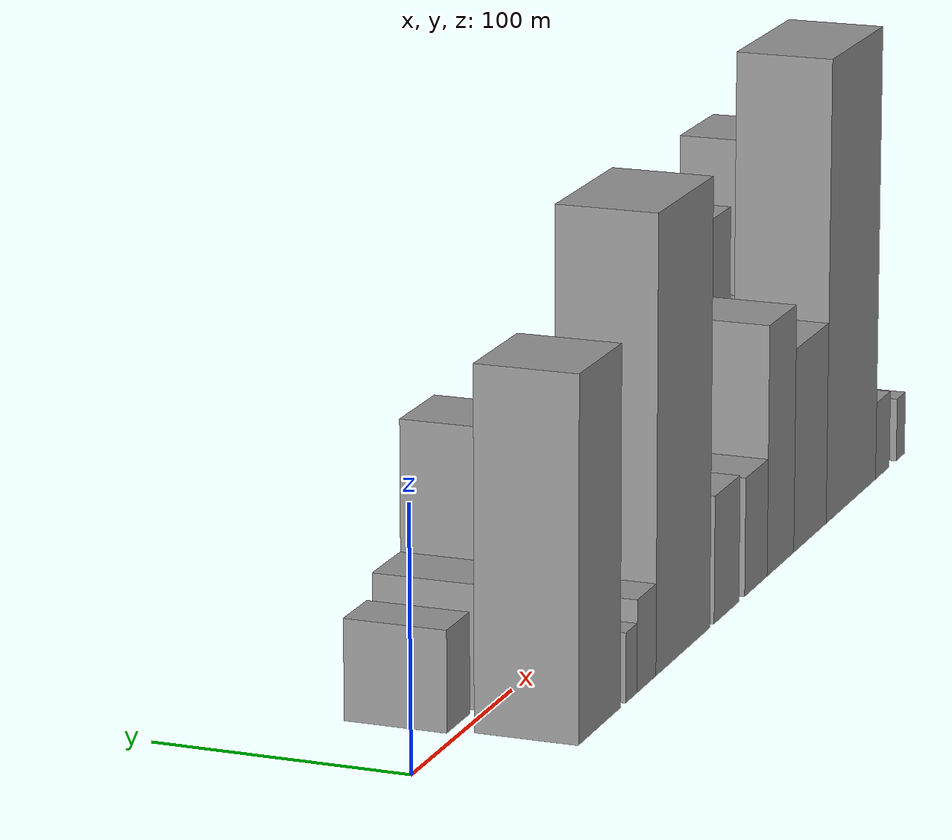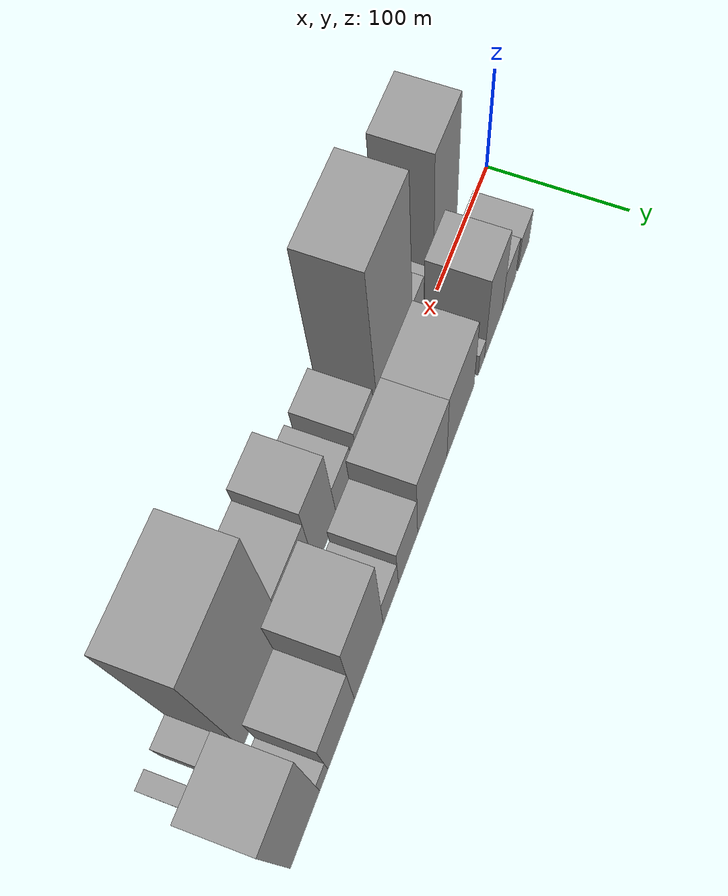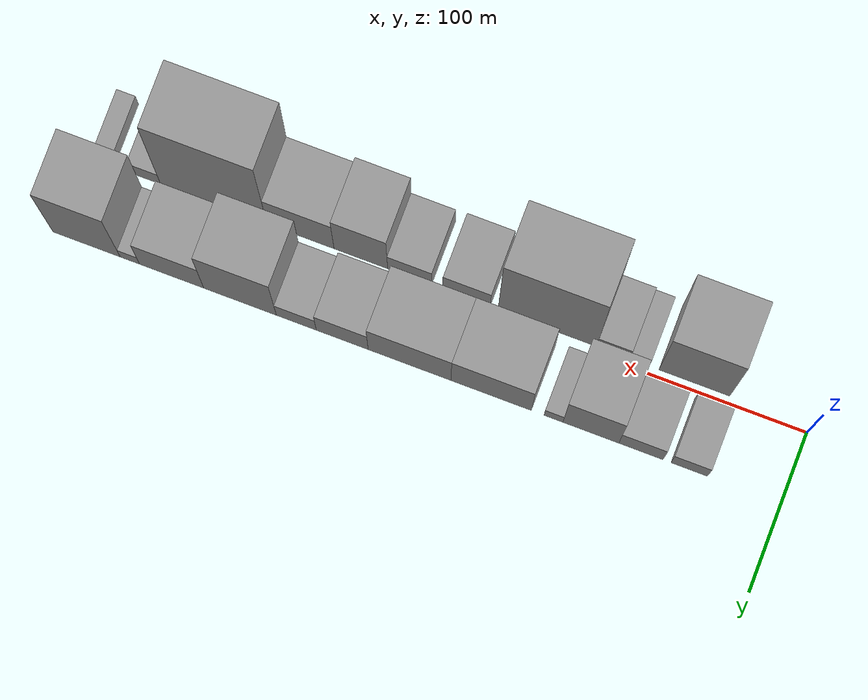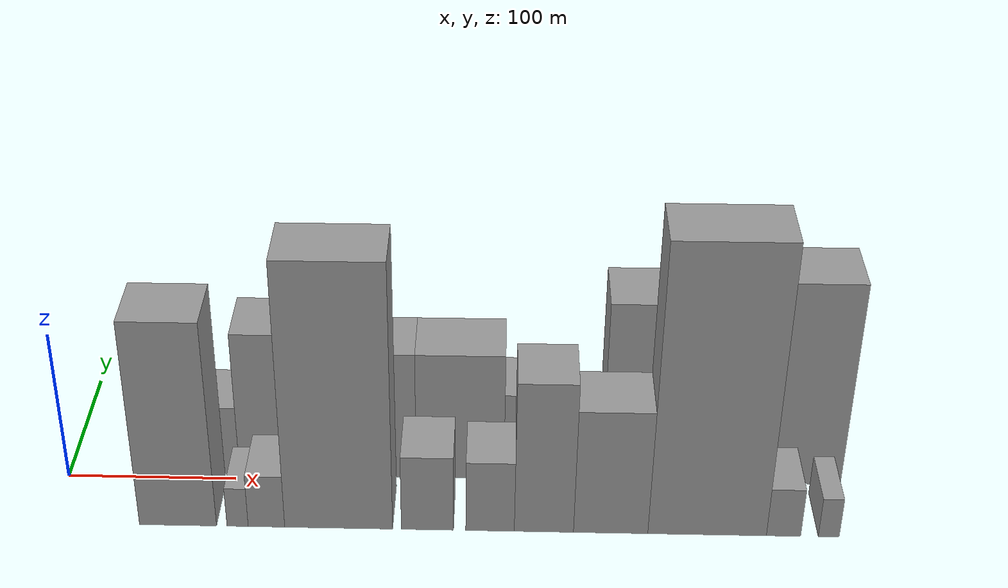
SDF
<sdf version="1.6">
 <world name="default">
  <scene>
   <sky><clouds><speed>12</speed></clouds></sky>
   <ambient>0.4 0.4 0.4 1</ambient>
   <background>0.7 0.7 0.7 1</background>
   <shadows>1</shadows>
  </scene>
  <gravity>0 0 -9.8066</gravity>
  <magnetic_field>6e-06 2.3e-05 -4.2e-05</magnetic_field>
  <physics default="0" name="default_physics" type="ode">
   <ode>
    <solver>
     <type>quick</type>
     <iters>10</iters>
     <sor>1.0</sor>
     <use_dynamic_moi_rescaling>0</use_dynamic_moi_rescaling>
    </solver>
    <constraints>
     <cfm>0</cfm>
     <erp>0.2</erp>
     <contact_max_correcting_vel>100</contact_max_correcting_vel>
     <contact_surface_layer>0.001</contact_surface_layer>
    </constraints>
   </ode>
   <max_step_size>0.004</max_step_size>
   <real_time_factor>1</real_time_factor>
   <real_time_update_rate>250</real_time_update_rate>
  </physics>
  <light name="sun" type="directional">
   <pose>0 0 10 0 0 0</pose>
   <diffuse>0.8 0.8 0.8 1</diffuse>
   <specular>0.2 0.2 0.2 1</specular>
   <attenuation>
    <range>1000</range>
    <constant>0.9</constant>
    <linear>0.01</linear>
    <quadratic>0.001</quadratic>
   </attenuation>
   <direction>-0.5 0.1 -0.9</direction>
  </light>
  <model name="building_1">
   <static>1</static>
   <pose>57.4059 24.5000 0 0.000000 0.000000 1.570796</pose>
   <link name="link">
    <pose>0 0 19.50 0 0 0</pose>
    <collision name="collision"><geometry><box><size>40.0000 22.8118 39.0000</size></box></geometry></collision>
    <visual name="visual">
     <cast_shadows>0</cast_shadows>
     <geometry><box><size>40.0000 22.8118 39.0000</size></box></geometry>
     <material>
      <script>
       <uri>model://grey_wall/materials/scripts</uri>
       <uri>model://grey_wall/materials/textures</uri>
       <name>vrc/grey_wall</name>
      </script>
     </material>
    </visual>
   </link>
  </model>
  <model name="building_2">
   <static>1</static>
   <pose>87.6651 24.5000 0 0.000000 0.000000 1.570796</pose>
   <link name="link">
    <pose>0 0 24.00 0 0 0</pose>
    <collision name="collision"><geometry><box><size>40.0000 27.7066 48.0000</size></box></geometry></collision>
    <visual name="visual">
     <cast_shadows>0</cast_shadows>
     <geometry><box><size>40.0000 27.7066 48.0000</size></box></geometry>
     <material>
      <script>
       <uri>model://grey_wall/materials/scripts</uri>
       <uri>model://grey_wall/materials/textures</uri>
       <name>vrc/grey_wall</name>
      </script>
     </material>
    </visual>
   </link>
  </model>
  <model name="building_3">
   <static>1</static>
   <pose>119.0277 24.5000 0 0.000000 0.000000 1.570796</pose>
   <link name="link">
    <pose>0 0 49.50 0 0 0</pose>
    <collision name="collision"><geometry><box><size>40.0000 35.0186 99.0000</size></box></geometry></collision>
    <visual name="visual">
     <cast_shadows>0</cast_shadows>
     <geometry><box><size>40.0000 35.0186 99.0000</size></box></geometry>
     <material>
      <script>
       <uri>model://grey_wall/materials/scripts</uri>
       <uri>model://grey_wall/materials/textures</uri>
       <name>vrc/grey_wall</name>
      </script>
     </material>
    </visual>
   </link>
  </model>
  <model name="building_4">
   <static>1</static>
   <pose>142.4382 24.5000 0 0.000000 0.000000 1.570796</pose>
   <link name="link">
    <pose>0 0 13.50 0 0 0</pose>
    <collision name="collision"><geometry><box><size>40.0000 11.8025 27.0000</size></box></geometry></collision>
    <visual name="visual">
     <cast_shadows>0</cast_shadows>
     <geometry><box><size>40.0000 11.8025 27.0000</size></box></geometry>
     <material>
      <script>
       <uri>model://grey_wall/materials/scripts</uri>
       <uri>model://grey_wall/materials/textures</uri>
       <name>vrc/grey_wall</name>
      </script>
     </material>
    </visual>
   </link>
  </model>
  <model name="building_5">
   <static>1</static>
   <pose>181.5953 24.5000 0 0.000000 0.000000 1.570796</pose>
   <link name="link">
    <pose>0 0 43.50 0 0 0</pose>
    <collision name="collision"><geometry><box><size>40.0000 50.5118 87.0000</size></box></geometry></collision>
    <visual name="visual">
     <cast_shadows>0</cast_shadows>
     <geometry><box><size>40.0000 50.5118 87.0000</size></box></geometry>
     <material>
      <script>
       <uri>model://grey_wall/materials/scripts</uri>
       <uri>model://grey_wall/materials/textures</uri>
       <name>vrc/grey_wall</name>
      </script>
     </material>
    </visual>
   </link>
  </model>
  <model name="building_6">
   <static>1</static>
   <pose>232.8568 24.5000 0 0.000000 0.000000 1.570796</pose>
   <link name="link">
    <pose>0 0 43.50 0 0 0</pose>
    <collision name="collision"><geometry><box><size>40.0000 52.0113 87.0000</size></box></geometry></collision>
    <visual name="visual">
     <cast_shadows>0</cast_shadows>
     <geometry><box><size>40.0000 52.0113 87.0000</size></box></geometry>
     <material>
      <script>
       <uri>model://grey_wall/materials/scripts</uri>
       <uri>model://grey_wall/materials/textures</uri>
       <name>vrc/grey_wall</name>
      </script>
     </material>
    </visual>
   </link>
  </model>
  <model name="building_7">
   <static>1</static>
   <pose>275.2147 24.5000 0 0.000000 0.000000 1.570796</pose>
   <link name="link">
    <pose>0 0 30.00 0 0 0</pose>
    <collision name="collision"><geometry><box><size>40.0000 32.7043 60.0000</size></box></geometry></collision>
    <visual name="visual">
     <cast_shadows>0</cast_shadows>
     <geometry><box><size>40.0000 32.7043 60.0000</size></box></geometry>
     <material>
      <script>
       <uri>model://grey_wall/materials/scripts</uri>
       <uri>model://grey_wall/materials/textures</uri>
       <name>vrc/grey_wall</name>
      </script>
     </material>
    </visual>
   </link>
  </model>
  <model name="building_8">
   <static>1</static>
   <pose>304.1273 24.5000 0 0.000000 0.000000 1.570796</pose>
   <link name="link">
    <pose>0 0 21.00 0 0 0</pose>
    <collision name="collision"><geometry><box><size>40.0000 25.1210 42.0000</size></box></geometry></collision>
    <visual name="visual">
     <cast_shadows>0</cast_shadows>
     <geometry><box><size>40.0000 25.1210 42.0000</size></box></geometry>
     <material>
      <script>
       <uri>model://grey_wall/materials/scripts</uri>
       <uri>model://grey_wall/materials/textures</uri>
       <name>vrc/grey_wall</name>
      </script>
     </material>
    </visual>
   </link>
  </model>
  <model name="building_9">
   <static>1</static>
   <pose>339.6196 24.5000 0 0.000000 0.000000 1.570796</pose>
   <link name="link">
    <pose>0 0 61.50 0 0 0</pose>
    <collision name="collision"><geometry><box><size>40.0000 45.8636 123.0000</size></box></geometry></collision>
    <visual name="visual">
     <cast_shadows>0</cast_shadows>
     <geometry><box><size>40.0000 45.8636 123.0000</size></box></geometry>
     <material>
      <script>
       <uri>model://grey_wall/materials/scripts</uri>
       <uri>model://grey_wall/materials/textures</uri>
       <name>vrc/grey_wall</name>
      </script>
     </material>
    </visual>
   </link>
  </model>
  <model name="building_10">
   <static>1</static>
   <pose>382.8134 24.5000 0 0.000000 0.000000 1.570796</pose>
   <link name="link">
    <pose>0 0 37.50 0 0 0</pose>
    <collision name="collision"><geometry><box><size>40.0000 40.5240 75.0000</size></box></geometry></collision>
    <visual name="visual">
     <cast_shadows>0</cast_shadows>
     <geometry><box><size>40.0000 40.5240 75.0000</size></box></geometry>
     <material>
      <script>
       <uri>model://grey_wall/materials/scripts</uri>
       <uri>model://grey_wall/materials/textures</uri>
       <name>vrc/grey_wall</name>
      </script>
     </material>
    </visual>
   </link>
  </model>
  <model name="building_11">
   <static>1</static>
   <pose>409.1963 24.5000 0 0.000000 0.000000 1.570796</pose>
   <link name="link">
    <pose>0 0 13.50 0 0 0</pose>
    <collision name="collision"><geometry><box><size>40.0000 12.2419 27.0000</size></box></geometry></collision>
    <visual name="visual">
     <cast_shadows>0</cast_shadows>
     <geometry><box><size>40.0000 12.2419 27.0000</size></box></geometry>
     <material>
      <script>
       <uri>model://grey_wall/materials/scripts</uri>
       <uri>model://grey_wall/materials/textures</uri>
       <name>vrc/grey_wall</name>
      </script>
     </material>
    </visual>
   </link>
  </model>
  <model name="building_12">
   <static>1</static>
   <pose>436.6167 24.5000 0 0.000000 0.000000 1.570796</pose>
   <link name="link">
    <pose>0 0 69.00 0 0 0</pose>
    <collision name="collision"><geometry><box><size>40.0000 42.5987 138.0000</size></box></geometry></collision>
    <visual name="visual">
     <cast_shadows>0</cast_shadows>
     <geometry><box><size>40.0000 42.5987 138.0000</size></box></geometry>
     <material>
      <script>
       <uri>model://grey_wall/materials/scripts</uri>
       <uri>model://grey_wall/materials/textures</uri>
       <name>vrc/grey_wall</name>
      </script>
     </material>
    </visual>
   </link>
  </model>
  <model name="building_13">
   <static>1</static>
   <pose>72.2000 -24.5000 0 0.000000 0.000000 1.570796</pose>
   <link name="link">
    <pose>0 0 69.00 0 0 0</pose>
    <collision name="collision"><geometry><box><size>40.0000 44.4000 138.0000</size></box></geometry></collision>
    <visual name="visual">
     <cast_shadows>0</cast_shadows>
     <geometry><box><size>40.0000 44.4000 138.0000</size></box></geometry>
     <material>
      <script>
       <uri>model://grey_wall/materials/scripts</uri>
       <uri>model://grey_wall/materials/textures</uri>
       <name>vrc/grey_wall</name>
      </script>
     </material>
    </visual>
   </link>
  </model>
  <model name="building_14">
   <static>1</static>
   <pose>106.4870 -24.5000 0 0.000000 0.000000 1.570796</pose>
   <link name="link">
    <pose>0 0 13.50 0 0 0</pose>
    <collision name="collision"><geometry><box><size>40.0000 12.1741 27.0000</size></box></geometry></collision>
    <visual name="visual">
     <cast_shadows>0</cast_shadows>
     <geometry><box><size>40.0000 12.1741 27.0000</size></box></geometry>
     <material>
      <script>
       <uri>model://grey_wall/materials/scripts</uri>
       <uri>model://grey_wall/materials/textures</uri>
       <name>vrc/grey_wall</name>
      </script>
     </material>
    </visual>
   </link>
  </model>
  <model name="building_15">
   <static>1</static>
   <pose>123.0718 -24.5000 0 0.000000 0.000000 1.570796</pose>
   <link name="link">
    <pose>0 0 18.00 0 0 0</pose>
    <collision name="collision"><geometry><box><size>40.0000 20.9955 36.0000</size></box></geometry></collision>
    <visual name="visual">
     <cast_shadows>0</cast_shadows>
     <geometry><box><size>40.0000 20.9955 36.0000</size></box></geometry>
     <material>
      <script>
       <uri>model://grey_wall/materials/scripts</uri>
       <uri>model://grey_wall/materials/textures</uri>
       <name>vrc/grey_wall</name>
      </script>
     </material>
    </visual>
   </link>
  </model>
  <model name="building_16">
   <static>1</static>
   <pose>164.5591 -24.5000 0 0.000000 0.000000 1.570796</pose>
   <link name="link">
    <pose>0 0 88.50 0 0 0</pose>
    <collision name="collision"><geometry><box><size>40.0000 61.9791 177.0000</size></box></geometry></collision>
    <visual name="visual">
     <cast_shadows>0</cast_shadows>
     <geometry><box><size>40.0000 61.9791 177.0000</size></box></geometry>
     <material>
      <script>
       <uri>model://grey_wall/materials/scripts</uri>
       <uri>model://grey_wall/materials/textures</uri>
       <name>vrc/grey_wall</name>
      </script>
     </material>
    </visual>
   </link>
  </model>
  <model name="building_17">
   <static>1</static>
   <pose>215.4723 -24.5000 0 0.000000 0.000000 1.570796</pose>
   <link name="link">
    <pose>0 0 25.50 0 0 0</pose>
    <collision name="collision"><geometry><box><size>40.0000 29.8472 51.0000</size></box></geometry></collision>
    <visual name="visual">
     <cast_shadows>0</cast_shadows>
     <geometry><box><size>40.0000 29.8472 51.0000</size></box></geometry>
     <material>
      <script>
       <uri>model://grey_wall/materials/scripts</uri>
       <uri>model://grey_wall/materials/textures</uri>
       <name>vrc/grey_wall</name>
      </script>
     </material>
    </visual>
   </link>
  </model>
  <model name="building_18">
   <static>1</static>
   <pose>251.2572 -24.5000 0 0.000000 0.000000 1.570796</pose>
   <link name="link">
    <pose>0 0 24.00 0 0 0</pose>
    <collision name="collision"><geometry><box><size>40.0000 27.7226 48.0000</size></box></geometry></collision>
    <visual name="visual">
     <cast_shadows>0</cast_shadows>
     <geometry><box><size>40.0000 27.7226 48.0000</size></box></geometry>
     <material>
      <script>
       <uri>model://grey_wall/materials/scripts</uri>
       <uri>model://grey_wall/materials/textures</uri>
       <name>vrc/grey_wall</name>
      </script>
     </material>
    </visual>
   </link>
  </model>
  <model name="building_19">
   <static>1</static>
   <pose>282.0122 -24.5000 0 0.000000 0.000000 1.570796</pose>
   <link name="link">
    <pose>0 0 51.00 0 0 0</pose>
    <collision name="collision"><geometry><box><size>40.0000 33.7875 102.0000</size></box></geometry></collision>
    <visual name="visual">
     <cast_shadows>0</cast_shadows>
     <geometry><box><size>40.0000 33.7875 102.0000</size></box></geometry>
     <material>
      <script>
       <uri>model://grey_wall/materials/scripts</uri>
       <uri>model://grey_wall/materials/textures</uri>
       <name>vrc/grey_wall</name>
      </script>
     </material>
    </visual>
   </link>
  </model>
  <model name="building_20">
   <static>1</static>
   <pose>320.0887 -24.5000 0 0.000000 0.000000 1.570796</pose>
   <link name="link">
    <pose>0 0 42.00 0 0 0</pose>
    <collision name="collision"><geometry><box><size>40.0000 42.3654 84.0000</size></box></geometry></collision>
    <visual name="visual">
     <cast_shadows>0</cast_shadows>
     <geometry><box><size>40.0000 42.3654 84.0000</size></box></geometry>
     <material>
      <script>
       <uri>model://grey_wall/materials/scripts</uri>
       <uri>model://grey_wall/materials/textures</uri>
       <name>vrc/grey_wall</name>
      </script>
     </material>
    </visual>
   </link>
  </model>
  <model name="building_21">
   <static>1</static>
   <pose>374.9813 -24.5000 0 0.000000 0.000000 1.570796</pose>
   <link name="link">
    <pose>0 0 96.00 0 0 0</pose>
    <collision name="collision"><geometry><box><size>40.0000 67.4198 192.0000</size></box></geometry></collision>
    <visual name="visual">
     <cast_shadows>0</cast_shadows>
     <geometry><box><size>40.0000 67.4198 192.0000</size></box></geometry>
     <material>
      <script>
       <uri>model://grey_wall/materials/scripts</uri>
       <uri>model://grey_wall/materials/textures</uri>
       <name>vrc/grey_wall</name>
      </script>
     </material>
    </visual>
   </link>
  </model>
  <model name="building_22">
   <static>1</static>
   <pose>418.4015 -24.5000 0 0.000000 0.000000 1.570796</pose>
   <link name="link">
    <pose>0 0 16.50 0 0 0</pose>
    <collision name="collision"><geometry><box><size>40.0000 19.4208 33.0000</size></box></geometry></collision>
    <visual name="visual">
     <cast_shadows>0</cast_shadows>
     <geometry><box><size>40.0000 19.4208 33.0000</size></box></geometry>
     <material>
      <script>
       <uri>model://grey_wall/materials/scripts</uri>
       <uri>model://grey_wall/materials/textures</uri>
       <name>vrc/grey_wall</name>
      </script>
     </material>
    </visual>
   </link>
  </model>
  <model name="building_23">
   <static>1</static>
   <pose>444.0371 -24.5000 0 0.000000 0.000000 1.570796</pose>
   <link name="link">
    <pose>0 0 13.50 0 0 0</pose>
    <collision name="collision"><geometry><box><size>40.0000 11.8504 27.0000</size></box></geometry></collision>
    <visual name="visual">
     <cast_shadows>0</cast_shadows>
     <geometry><box><size>40.0000 11.8504 27.0000</size></box></geometry>
     <material>
      <script>
       <uri>model://grey_wall/materials/scripts</uri>
       <uri>model://grey_wall/materials/textures</uri>
       <name>vrc/grey_wall</name>
      </script>
     </material>
    </visual>
   </link>
  </model>
 </world>
</sdf>
